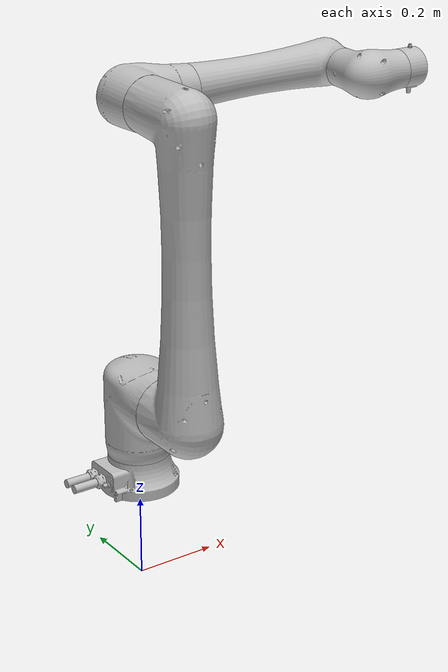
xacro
<?xml version="1.0"?>
<robot xmlns:xacro="http://ros.org/wiki/xacro"
       name="crx10ial" >

  <!-- common stuff -->

  <!-- crx10ial -->
  <xacro:include filename="$(find fanuc_crx10ial_support)/urdf/crx10ial.urdf.xacro" />

  <link name="world" />

  <joint name="world_joint" type="fixed">
    <parent link="world" />
    <child link = "link_base" />
    <origin xyz="0.0 0.0 0.329" rpy="0.0 0.0 0.0" />
  </joint>

</robot>

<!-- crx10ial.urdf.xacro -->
<robot
  name="crx10ial">
  <link
    name="link_base">
    <visual>
      <origin
        xyz="0 0 0"
        rpy="0 0 0" />
      <geometry>
        <mesh
          filename="package://fanuc_crx10ial_support/meshes/link_base.STL" />
      </geometry>
      <material
        name="">
        <color
          rgba="0.75294 0.75294 0.75294 1" />
      </material>
    </visual>
    <collision>
      <origin
        xyz="0 0 0"
        rpy="0 0 0" />
      <geometry>
        <mesh
          filename="package://fanuc_crx10ial_support/meshes/link_base.STL" />
      </geometry>
    </collision>
  </link>
  <link
    name="link_1">
    <visual>
      <origin
        xyz="0 0 0"
        rpy="1.5707963268 0 0" />
      <geometry>
        <mesh
          filename="package://fanuc_crx10ial_support/meshes/link_1.STL" />
      </geometry>
      <material
        name="">
        <color
          rgba="0.752941176470588 0.752941176470588 0.752941176470588 1" />
      </material>
    </visual>
    <collision>
      <origin
        xyz="0 0 0"
        rpy="1.5707963268 0 0" />
      <geometry>
        <mesh
          filename="package://fanuc_crx10ial_support/meshes/link_1.STL" />
      </geometry>
    </collision>
  </link>
  <joint
    name="joint_1"
    type="continuous">
    <origin
      xyz="0 0 0"
      rpy="-1.5707963268 0 0" />
    <parent
      link="link_base" />
    <child
      link="link_1" />
    <axis
      xyz="0 -1 0" />
  </joint>
  <link
    name="link_2">
    <visual>
      <origin
        xyz="0 0 0"
        rpy="-1.5707963268 0 0" />
      <geometry>
        <mesh
          filename="package://fanuc_crx10ial_support/meshes/link_2.STL" />
      </geometry>
      <material
        name="">
        <color
          rgba="0.752941176470588 0.752941176470588 0.752941176470588 1" />
      </material>
    </visual>
    <collision>
      <origin
        xyz="0 0 0"
        rpy="-1.5707963268 0 0" />
      <geometry>
        <mesh
          filename="package://fanuc_crx10ial_support/meshes/link_2.STL" />
      </geometry>
    </collision>
  </link>
  <joint
    name="joint_2"
    type="continuous">
    <origin
      xyz="0 -0.159 -0.0749953390526379"
      rpy="3.14159265359 0 0" />
    <parent
      link="link_1" />
    <child
      link="link_2" />
    <axis
      xyz="0 0 -1" />
  </joint>
  <link
    name="link_3">
    <visual>
      <origin
        xyz="0 0 0"
        rpy="0 1.5707963268 1.5707963268" />
      <geometry>
        <mesh
          filename="package://fanuc_crx10ial_support/meshes/link_3.STL" />
      </geometry>
      <material
        name="">
        <color
          rgba="0.752941176470588 0.752941176470588 0.752941176470588 1" />
      </material>
    </visual>
    <collision>
      <origin
        xyz="0 0 0"
        rpy="0 1.5707963268 1.5707963268" />
      <geometry>
        <mesh
          filename="package://fanuc_crx10ial_support/meshes/link_3.STL" />
      </geometry>
    </collision>
  </link>
  <joint
    name="joint_3"
    type="continuous">
    <origin
      xyz="0 0.70999996924741 0.000194265063992456"
      rpy="0 -1.5707963268 0" />
    <parent
      link="link_2" />
    <child
      link="link_3" />
    <axis
      xyz="1 0 0" />
  </joint>
  <link
    name="link_4">
    <visual>
      <origin
        xyz="0 0 0"
        rpy="-1.5707963268 0 0" />
      <geometry>
        <mesh
          filename="package://fanuc_crx10ial_support/meshes/link_4.STL" />
      </geometry>
      <material
        name="">
        <color
          rgba="0.752941176470588 0.752941176470588 0.752941176470588 1" />
      </material>
    </visual>
    <collision>
      <origin
        xyz="0 0 0"
        rpy="0 0 0" />
      <geometry>
        <mesh
          filename="package://fanuc_crx10ial_support/meshes/link_4.STL" />
      </geometry>
    </collision>
  </link>
  <joint
    name="joint_4"
    type="continuous">
    <origin
      xyz="-0.0750453390606975 0 -0.153"
      rpy="0 1.5707963268 0" />
    <parent
      link="link_3" />
    <child
      link="link_4" />
    <axis
      xyz="-1 0 0" />
  </joint>
  <link
    name="link_5">
    <visual>
      <origin
        xyz="0 0 0"
        rpy="-1.5707963268 1.5707963268 0" />
      <geometry>
        <mesh
          filename="package://fanuc_crx10ial_support/meshes/link_5.STL" />
      </geometry>
      <material
        name="">
        <color
          rgba="0.752941176470588 0.752941176470588 0.752941176470588 1" />
      </material>
    </visual>
    <collision>
      <origin
        xyz="0 0 0"
        rpy="-1.5707963268 1.5707963268 0" />
      <geometry>
        <mesh
          filename="package://fanuc_crx10ial_support/meshes/link_5.STL" />
      </geometry>
    </collision>
  </link>
  <joint
    name="joint_5"
    type="continuous">
    <origin
      xyz="0.386 0 0.0639871901605984"
      rpy="0 -1.5707963268 0" />
    <parent
      link="link_4" />
    <child
      link="link_5" />
    <axis
      xyz="1 0 0" />
  </joint>
  <link
    name="link_6">
    <visual>
      <origin
        xyz="0 0 0"
        rpy="0 -1.5707963268 0" />
      <geometry>
        <mesh
          filename="package://fanuc_crx10ial_support/meshes/link_6.STL" />
      </geometry>
      <material
        name="">
        <color
          rgba="0.752941176470588 0.752941176470588 0.752941176470588 1" />
      </material>
    </visual>
    <collision>
      <origin
       xyz="0 0 0"
        rpy="0 -1.5707963268 0" />
      <geometry>
        <mesh
          filename="package://fanuc_crx10ial_support/meshes/link_6.STL" />
      </geometry>
    </collision>
  </link>
  <joint
    name="joint_6"
    type="continuous">
    <origin
      xyz="0.0850128098394016 0 -0.0995000000000001"
      rpy="0 3.14159265359 0" />
    <parent
      link="link_5" />
    <child
      link="link_6" />
    <axis
      xyz="0 0 -1" />

  </joint>
   <joint name="ee_fixed_joint" type="fixed">
      <parent link="link_6" />
      <child link = "ee_link" />
      <origin xyz="0 0.0 0.0595" rpy="0.0 0.0 0.0" />
    </joint>
    <link name="ee_link">
      <collision>
        <geometry>
          <box size="0.01 0.01 0.01"/>
        </geometry>
        <origin rpy="0 0 0" xyz="0 0 0.01"/>
      </collision>
    </link>
</robot>
